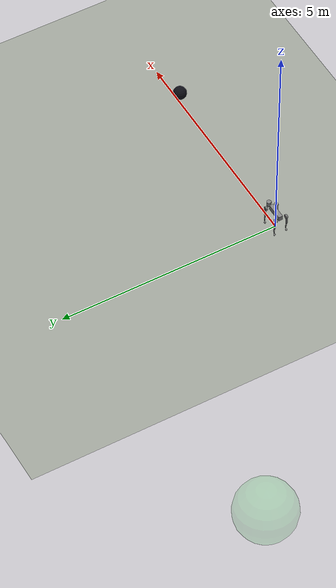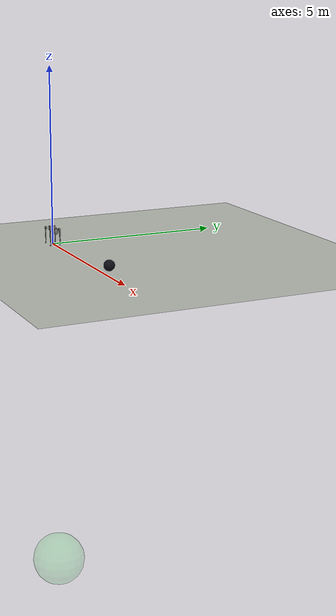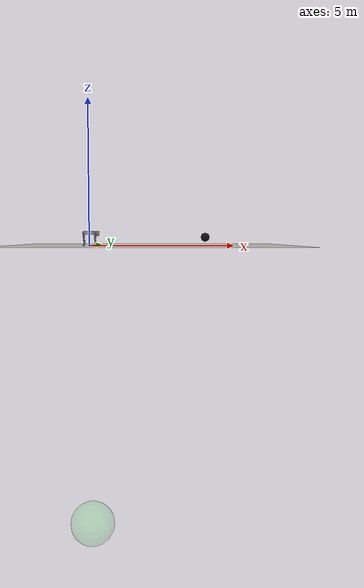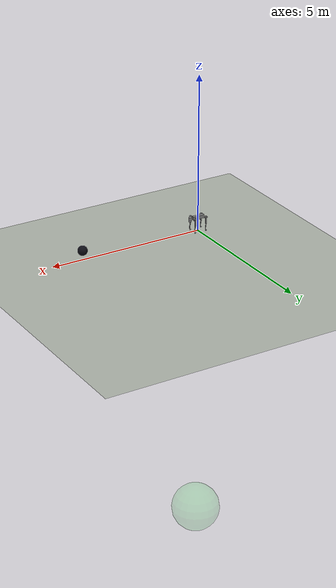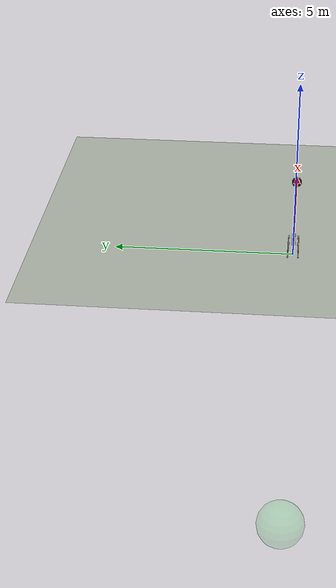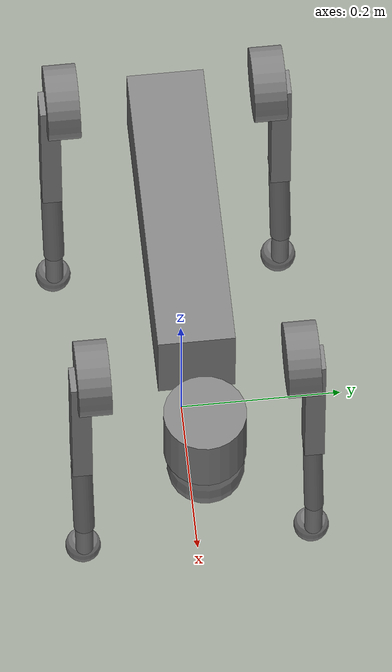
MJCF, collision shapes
<mujoco model="go2 scene">
  <include file="go2.xml"/>

  <visual>
    <headlight diffuse="0.7 0.7 0.65" ambient="0.35 0.35 0.4" specular="0.3 0.3 0.3"/>
    <rgba haze="0.15 0.25 0.35 1"/>
    <global azimuth="-130" elevation="-20"/>
  </visual>

  <asset>
    <texture type="skybox" builtin="gradient" rgb1="0.35 0.55 0.8" rgb2="0.85 0.9 1.0" width="512" height="3072"/>
    <texture type="2d" name="groundplane" builtin="checker" rgb1="0.28 0.38 0.2" rgb2="0.35 0.42 0.25" width="512" height="512"/>
    <material name="groundplane" texture="groundplane" texuniform="true" texrepeat="10 10" reflectance="0.05"/>

    <!-- Taste zones: glowing floor patches (match LoomingArena) -->
    <material name="taste_sugar" rgba="0.15 0.75 0.15 0.5" emission="0.3" reflectance="0.15"/>
    <material name="taste_bitter" rgba="0.75 0.12 0.12 0.5" emission="0.3" reflectance="0.15"/>
    <!-- Odor sources: glowing spheres + translucent halos -->
    <material name="odor_att_core" rgba="0.2 0.85 0.3 0.7" emission="0.5"/>
    <material name="odor_att_halo" rgba="0.2 0.85 0.3 0.15" emission="0.8"/>
    <material name="odor_rep_core" rgba="0.85 0.2 0.85 0.7" emission="0.5"/>
    <material name="odor_rep_halo" rgba="0.85 0.2 0.85 0.15" emission="0.8"/>
  </asset>

  <worldbody>
    <light name="sun" pos="0 0 15" dir="0.4 0.3 -1" diffuse="1.0 0.95 0.85" specular="0.5 0.5 0.4" castshadow="true" directional="true"/>
    <geom name="floor" size="0 0 0.05" type="plane" material="groundplane"/>

    <!-- Visual-object placeholders (positioned dynamically by Go2Sim.place_*) -->
    <geom name="taste_zone_0" type="cylinder" size="0.01 0.02" pos="0 0 -10" material="taste_sugar" contype="0" conaffinity="0"/>
    <geom name="taste_zone_1" type="cylinder" size="0.01 0.02" pos="0 0 -10" material="taste_bitter" contype="0" conaffinity="0"/>
    <geom name="odor_core_0" type="sphere" size="0.3" pos="0 0 -10" material="odor_att_core" contype="0" conaffinity="0"/>
    <geom name="odor_halo_0" type="sphere" size="0.8" pos="0 0 -10" material="odor_att_halo" contype="0" conaffinity="0"/>
    <geom name="odor_core_1" type="sphere" size="0.3" pos="0 0 -10" material="odor_rep_core" contype="0" conaffinity="0"/>
    <geom name="odor_halo_1" type="sphere" size="0.8" pos="0 0 -10" material="odor_rep_halo" contype="0" conaffinity="0"/>

    <body name="looming_ball" pos="4.0 0 0.3">
      <freejoint name="looming_ball_joint"/>
      <geom name="looming_ball_geom" type="sphere" size="0.15" rgba="0.05 0.05 0.08 1"/>
    </body>
  </worldbody>
</mujoco>

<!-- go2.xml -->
<mujoco model="go2">
  <compiler angle="radian" meshdir="assets" autolimits="true"/>

  <option cone="elliptic" impratio="100"/>

  <default>
    <default class="go2">
      <geom friction="0.6" margin="0.001" condim="1"/>
      <joint axis="0 1 0" damping="2" armature="0.01" frictionloss="0.2"/>
      <motor ctrlrange="-23.7 23.7"/>
      <default class="abduction">
        <joint axis="1 0 0" range="-1.0472 1.0472"/>
      </default>
      <default class="hip">
        <default class="front_hip">
          <joint range="-1.5708 3.4907"/>
        </default>
        <default class="back_hip">
          <joint range="-0.5236 4.5379"/>
        </default>
      </default>
      <default class="knee">
        <joint range="-2.7227 -0.83776"/>
        <motor ctrlrange="-45.43 45.43"/>
      </default>
      <default class="visual">
        <geom type="mesh" contype="0" conaffinity="0" group="2"/>
      </default>
      <default class="collision">
        <geom group="3"/>
        <default class="foot">
          <geom size="0.022" pos="-0.002 0 -0.213" priority="1" solimp="0.015 1 0.022" condim="6"
            friction="0.8 0.02 0.01"/>
        </default>
      </default>
    </default>
  </default>

  <asset>
    <material name="metal" rgba=".9 .95 .95 1"/>
    <material name="black" rgba="0 0 0 1"/>
    <material name="white" rgba="1 1 1 1"/>
    <material name="gray" rgba="0.671705 0.692426 0.774270 1"/>

    <mesh file="base_0.obj"/>
    <mesh file="base_1.obj"/>
    <mesh file="base_2.obj"/>
    <mesh file="base_3.obj"/>
    <mesh file="base_4.obj"/>
    <mesh file="hip_0.obj"/>
    <mesh file="hip_1.obj"/>
    <mesh file="thigh_0.obj"/>
    <mesh file="thigh_1.obj"/>
    <mesh file="thigh_mirror_0.obj"/>
    <mesh file="thigh_mirror_1.obj"/>
    <mesh file="calf_0.obj"/>
    <mesh file="calf_1.obj"/>
    <mesh file="calf_mirror_0.obj"/>
    <mesh file="calf_mirror_1.obj"/>
    <mesh file="foot.obj"/>
  </asset>

  <worldbody>
    <body name="base" pos="0 0 0.445" childclass="go2">
      <inertial pos="0.021112 0 -0.005366" quat="-0.000543471 0.713435 -0.00173769 0.700719" mass="6.921"
        diaginertia="0.107027 0.0980771 0.0244531"/>
      <freejoint/>
      <geom mesh="base_0" material="black" class="visual"/>
      <geom mesh="base_1" material="black" class="visual"/>
      <geom mesh="base_2" material="black" class="visual"/>
      <geom mesh="base_3" material="white" class="visual"/>
      <geom mesh="base_4" material="gray" class="visual"/>
      <geom size="0.1881 0.04675 0.057" type="box" class="collision"/>
      <geom size="0.05 0.045" pos="0.285 0 0.01" type="cylinder" class="collision"/>
      <geom size="0.047" pos="0.293 0 -0.06" class="collision"/>
      <site name="imu" pos="-0.02557 0 0.04232"/>
      <camera name="eye_left"  pos="0.28 0.04 0.10" xyaxes="0 -1 0 0 0 1" fovy="90"/>
      <camera name="eye_right" pos="0.28 -0.04 0.10" xyaxes="0 -1 0 0 0 1" fovy="90"/>
      <body name="FL_hip" pos="0.1934 0.0465 0">
        <inertial pos="-0.0054 0.00194 -0.000105" quat="0.497014 0.499245 0.505462 0.498237" mass="0.678"
          diaginertia="0.00088403 0.000596003 0.000479967"/>
        <joint name="FL_hip_joint" class="abduction"/>
        <geom mesh="hip_0" material="metal" class="visual"/>
        <geom mesh="hip_1" material="gray" class="visual"/>
        <geom size="0.046 0.02" pos="0 0.08 0" quat="1 1 0 0" type="cylinder" class="collision"/>
        <body name="FL_thigh" pos="0 0.0955 0">
          <inertial pos="-0.00374 -0.0223 -0.0327" quat="0.829533 0.0847635 -0.0200632 0.551623" mass="1.152"
            diaginertia="0.00594973 0.00584149 0.000878787"/>
          <joint name="FL_thigh_joint" class="front_hip"/>
          <geom mesh="thigh_0" material="metal" class="visual"/>
          <geom mesh="thigh_1" material="gray" class="visual"/>
          <geom size="0.1065 0.01225 0.017" pos="0 0 -0.1065" quat="0.707107 0 0.707107 0" type="box"
            class="collision"/>
          <body name="FL_calf" pos="0 0 -0.213">
            <inertial pos="0.00629595 -0.000622121 -0.141417" quat="0.710672 0.00154099 -0.00450087 0.703508"
              mass="0.241352" diaginertia="0.0014901 0.00146356 5.31397e-05"/>
            <joint name="FL_calf_joint" class="knee"/>
            <geom mesh="calf_0" material="gray" class="visual"/>
            <geom mesh="calf_1" material="black" class="visual"/>
            <geom size="0.012 0.06" pos="0.008 0 -0.06" quat="0.994493 0 -0.104807 0" type="cylinder"
              class="collision"/>
            <geom size="0.011 0.0325" pos="0.02 0 -0.148" quat="0.999688 0 0.0249974 0" type="cylinder"
              class="collision"/>
            <geom pos="0 0 -0.213" mesh="foot" class="visual" material="black"/>
            <geom name="FL" class="foot"/>
          </body>
        </body>
      </body>
      <body name="FR_hip" pos="0.1934 -0.0465 0">
        <inertial pos="-0.0054 -0.00194 -0.000105" quat="0.498237 0.505462 0.499245 0.497014" mass="0.678"
          diaginertia="0.00088403 0.000596003 0.000479967"/>
        <joint name="FR_hip_joint" class="abduction"/>
        <geom mesh="hip_0" material="metal" class="visual" quat="4.63268e-05 1 0 0"/>
        <geom mesh="hip_1" material="gray" class="visual" quat="4.63268e-05 1 0 0"/>
        <geom size="0.046 0.02" pos="0 -0.08 0" quat="0.707107 0.707107 0 0" type="cylinder" class="collision"/>
        <body name="FR_thigh" pos="0 -0.0955 0">
          <inertial pos="-0.00374 0.0223 -0.0327" quat="0.551623 -0.0200632 0.0847635 0.829533" mass="1.152"
            diaginertia="0.00594973 0.00584149 0.000878787"/>
          <joint name="FR_thigh_joint" class="front_hip"/>
          <geom mesh="thigh_mirror_0" material="metal" class="visual"/>
          <geom mesh="thigh_mirror_1" material="gray" class="visual"/>
          <geom size="0.1065 0.01225 0.017" pos="0 0 -0.1065" quat="0.707107 0 0.707107 0" type="box"
            class="collision"/>
          <body name="FR_calf" pos="0 0 -0.213">
            <inertial pos="0.00629595 0.000622121 -0.141417" quat="0.703508 -0.00450087 0.00154099 0.710672"
              mass="0.241352" diaginertia="0.0014901 0.00146356 5.31397e-05"/>
            <joint name="FR_calf_joint" class="knee"/>
            <geom mesh="calf_mirror_0" material="gray" class="visual"/>
            <geom mesh="calf_mirror_1" material="black" class="visual"/>
            <geom size="0.013 0.06" pos="0.01 0 -0.06" quat="0.995004 0 -0.0998334 0" type="cylinder"
              class="collision"/>
            <geom size="0.011 0.0325" pos="0.02 0 -0.148" quat="0.999688 0 0.0249974 0" type="cylinder"
              class="collision"/>
            <geom pos="0 0 -0.213" mesh="foot" class="visual" material="black"/>
            <geom name="FR" class="foot"/>
          </body>
        </body>
      </body>
      <body name="RL_hip" pos="-0.1934 0.0465 0">
        <inertial pos="0.0054 0.00194 -0.000105" quat="0.505462 0.498237 0.497014 0.499245" mass="0.678"
          diaginertia="0.00088403 0.000596003 0.000479967"/>
        <joint name="RL_hip_joint" class="abduction"/>
        <geom mesh="hip_0" material="metal" class="visual" quat="4.63268e-05 0 1 0"/>
        <geom mesh="hip_1" material="gray" class="visual" quat="4.63268e-05 0 1 0"/>
        <geom size="0.046 0.02" pos="0 0.08 0" quat="0.707107 0.707107 0 0" type="cylinder" class="collision"/>
        <body name="RL_thigh" pos="0 0.0955 0">
          <inertial pos="-0.00374 -0.0223 -0.0327" quat="0.829533 0.0847635 -0.0200632 0.551623" mass="1.152"
            diaginertia="0.00594973 0.00584149 0.000878787"/>
          <joint name="RL_thigh_joint" class="back_hip"/>
          <geom mesh="thigh_0" material="metal" class="visual"/>
          <geom mesh="thigh_1" material="gray" class="visual"/>
          <geom size="0.1065 0.01225 0.017" pos="0 0 -0.1065" quat="0.707107 0 0.707107 0" type="box"
            class="collision"/>
          <body name="RL_calf" pos="0 0 -0.213">
            <inertial pos="0.00629595 -0.000622121 -0.141417" quat="0.710672 0.00154099 -0.00450087 0.703508"
              mass="0.241352" diaginertia="0.0014901 0.00146356 5.31397e-05"/>
            <joint name="RL_calf_joint" class="knee"/>
            <geom mesh="calf_0" material="gray" class="visual"/>
            <geom mesh="calf_1" material="black" class="visual"/>
            <geom size="0.013 0.06" pos="0.01 0 -0.06" quat="0.995004 0 -0.0998334 0" type="cylinder"
              class="collision"/>
            <geom size="0.011 0.0325" pos="0.02 0 -0.148" quat="0.999688 0 0.0249974 0" type="cylinder"
              class="collision"/>
            <geom pos="0 0 -0.213" mesh="foot" class="visual" material="black"/>
            <geom name="RL" class="foot"/>
          </body>
        </body>
      </body>
      <body name="RR_hip" pos="-0.1934 -0.0465 0">
        <inertial pos="0.0054 -0.00194 -0.000105" quat="0.499245 0.497014 0.498237 0.505462" mass="0.678"
          diaginertia="0.00088403 0.000596003 0.000479967"/>
        <joint name="RR_hip_joint" class="abduction"/>
        <geom mesh="hip_0" material="metal" class="visual" quat="2.14617e-09 4.63268e-05 4.63268e-05 -1"/>
        <geom mesh="hip_1" material="gray" class="visual" quat="2.14617e-09 4.63268e-05 4.63268e-05 -1"/>
        <geom size="0.046 0.02" pos="0 -0.08 0" quat="0.707107 0.707107 0 0" type="cylinder" class="collision"/>
        <body name="RR_thigh" pos="0 -0.0955 0">
          <inertial pos="-0.00374 0.0223 -0.0327" quat="0.551623 -0.0200632 0.0847635 0.829533" mass="1.152"
            diaginertia="0.00594973 0.00584149 0.000878787"/>
          <joint name="RR_thigh_joint" class="back_hip"/>
          <geom mesh="thigh_mirror_0" material="metal" class="visual"/>
          <geom mesh="thigh_mirror_1" material="gray" class="visual"/>
          <geom size="0.1065 0.01225 0.017" pos="0 0 -0.1065" quat="0.707107 0 0.707107 0" type="box"
            class="collision"/>
          <body name="RR_calf" pos="0 0 -0.213">
            <inertial pos="0.00629595 0.000622121 -0.141417" quat="0.703508 -0.00450087 0.00154099 0.710672"
              mass="0.241352" diaginertia="0.0014901 0.00146356 5.31397e-05"/>
            <joint name="RR_calf_joint" class="knee"/>
            <geom mesh="calf_mirror_0" material="gray" class="visual"/>
            <geom mesh="calf_mirror_1" material="black" class="visual"/>
            <geom size="0.013 0.06" pos="0.01 0 -0.06" quat="0.995004 0 -0.0998334 0" type="cylinder"
              class="collision"/>
            <geom size="0.011 0.0325" pos="0.02 0 -0.148" quat="0.999688 0 0.0249974 0" type="cylinder"
              class="collision"/>
            <geom pos="0 0 -0.213" mesh="foot" class="visual" material="black"/>
            <geom name="RR" class="foot"/>
          </body>
        </body>
      </body>
    </body>
  </worldbody>

  <actuator>
    <motor class="abduction" name="FL_hip" joint="FL_hip_joint"/>
    <motor class="hip" name="FL_thigh" joint="FL_thigh_joint"/>
    <motor class="knee" name="FL_calf" joint="FL_calf_joint"/>
    <motor class="abduction" name="FR_hip" joint="FR_hip_joint"/>
    <motor class="hip" name="FR_thigh" joint="FR_thigh_joint"/>
    <motor class="knee" name="FR_calf" joint="FR_calf_joint"/>
    <motor class="abduction" name="RL_hip" joint="RL_hip_joint"/>
    <motor class="hip" name="RL_thigh" joint="RL_thigh_joint"/>
    <motor class="knee" name="RL_calf" joint="RL_calf_joint"/>
    <motor class="abduction" name="RR_hip" joint="RR_hip_joint"/>
    <motor class="hip" name="RR_thigh" joint="RR_thigh_joint"/>
    <motor class="knee" name="RR_calf" joint="RR_calf_joint"/>
  </actuator>

  <keyframe>
    <key name="home" qpos="0 0 0.27 1 0 0 0 0 0.9 -1.8 0 0.9 -1.8 0 0.9 -1.8 0 0.9 -1.8 4.0 0 0.3 1 0 0 0"
      ctrl="0 0.9 -1.8 0 0.9 -1.8 0 0.9 -1.8 0 0.9 -1.8"/>
  </keyframe>
</mujoco>
